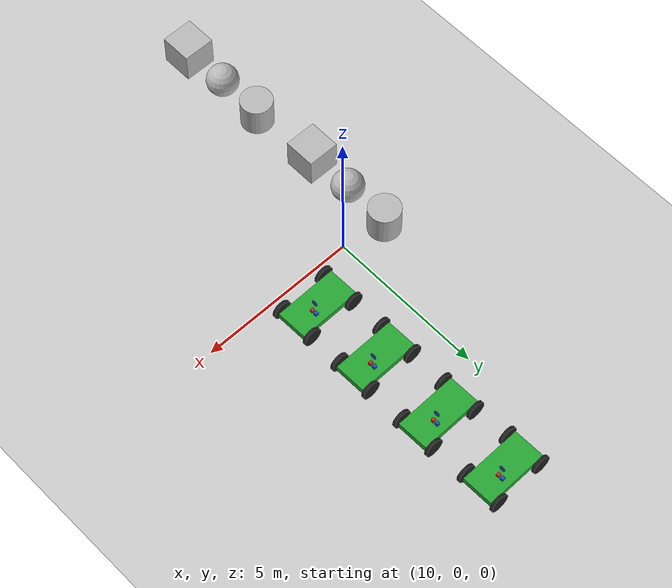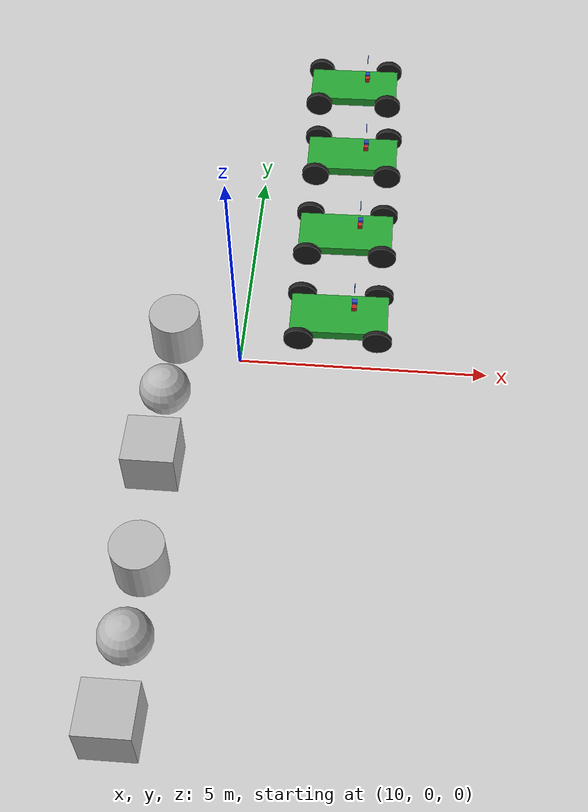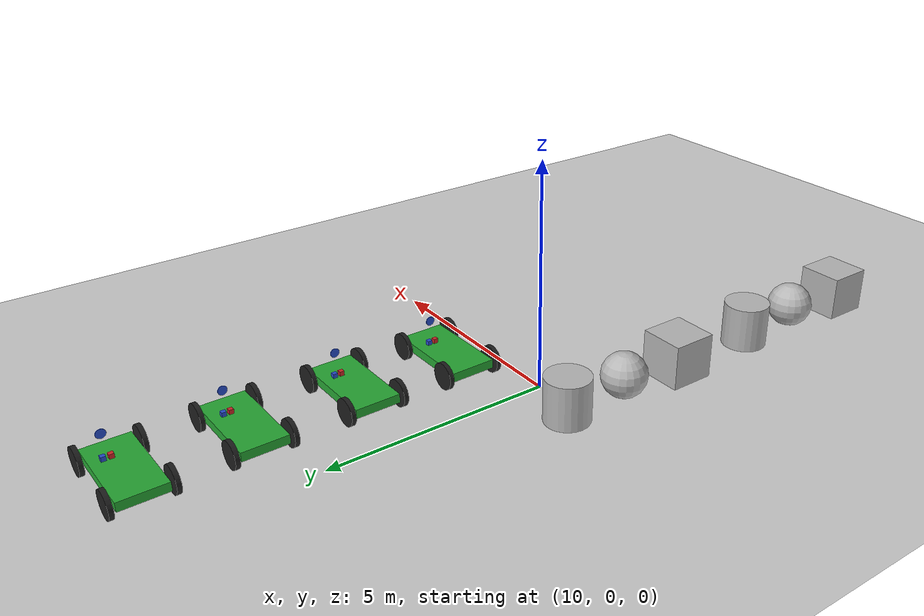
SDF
<sdf version="1.7">
 <world name="default">
  <model name="ground_plane">
   <static>1</static>
   <link name="link">
    <collision name="collision">
     <geometry><plane><normal>0 0 1</normal><size>100 100</size></plane></geometry>
     <surface>
      <contact><collide_bitmask>65535</collide_bitmask></contact>
      <friction><ode><mu>100</mu><mu2>50</mu2></ode></friction>
     </surface>
    </collision>
    <visual name="visual">
     <cast_shadows>0</cast_shadows>
     <geometry><plane><normal>0 0 1</normal><size>100 100</size></plane></geometry>
     <material>
      <script><uri>file://media/materials/scripts/gazebo.material</uri><name>Gazebo/Grey</name></script>
     </material>
    </visual>
   </link>
  </model>
  <model name="textured_shapes">
   <pose>8.80989 -6.41031 0.51 0 -0 0</pose>
   <link name="box">
    <pose>0 -1.5 0 0 -0 0</pose>
    <collision name="collision"><geometry><box><size>1 1 1</size></box></geometry></collision>
    <visual name="visual">
     <geometry><box><size>1 1 1</size></box></geometry>
     <material>
      <script>
       <uri>model://textured_shapes/materials/scripts</uri>
       <uri>model://textured_shapes/materials/textures</uri>
       <name>TexturedShape/Squares</name>
      </script>
     </material>
    </visual>
    <inertial>
     <inertia><ixx>1</ixx><ixy>0</ixy><ixz>0</ixz><iyy>1</iyy><iyz>0</iyz><izz>1</izz></inertia>
     <mass>1</mass>
    </inertial>
   </link>
   <link name="sphere">
    <collision name="collision"><geometry><sphere><radius>0.5</radius></sphere></geometry></collision>
    <visual name="visual">
     <geometry><sphere><radius>0.5</radius></sphere></geometry>
     <material>
      <script>
       <uri>model://textured_shapes/materials/scripts</uri>
       <uri>model://textured_shapes/materials/textures</uri>
       <name>TexturedShape/Squares</name>
      </script>
     </material>
    </visual>
    <inertial>
     <inertia><ixx>1</ixx><ixy>0</ixy><ixz>0</ixz><iyy>1</iyy><iyz>0</iyz><izz>1</izz></inertia>
     <mass>1</mass>
    </inertial>
   </link>
   <link name="cylinder">
    <pose>0 1.5 0 0 -0 0</pose>
    <collision name="collision">
     <geometry><cylinder><radius>0.5</radius><length>1</length></cylinder></geometry>
    </collision>
    <visual name="visual">
     <geometry><cylinder><radius>0.5</radius><length>1</length></cylinder></geometry>
     <material>
      <script>
       <uri>model://textured_shapes/materials/scripts</uri>
       <uri>model://textured_shapes/materials/textures</uri>
       <name>TexturedShape/Squares</name>
      </script>
     </material>
    </visual>
    <inertial>
     <inertia><ixx>1</ixx><ixy>0</ixy><ixz>0</ixz><iyy>1</iyy><iyz>0</iyz><izz>1</izz></inertia>
     <mass>1</mass>
    </inertial>
   </link>
  </model>
  <model name="textured_shapes_0">
   <pose>8.6966 -1.17541 0.51 0 -0 0</pose>
   <link name="box">
    <pose>0 -1.5 0 0 -0 0</pose>
    <collision name="collision"><geometry><box><size>1 1 1</size></box></geometry></collision>
    <visual name="visual">
     <geometry><box><size>1 1 1</size></box></geometry>
     <material>
      <script>
       <uri>model://textured_shapes/materials/scripts</uri>
       <uri>model://textured_shapes/materials/textures</uri>
       <name>TexturedShape/Squares</name>
      </script>
     </material>
    </visual>
    <inertial>
     <inertia><ixx>1</ixx><ixy>0</ixy><ixz>0</ixz><iyy>1</iyy><iyz>0</iyz><izz>1</izz></inertia>
     <mass>1</mass>
    </inertial>
   </link>
   <link name="sphere">
    <collision name="collision"><geometry><sphere><radius>0.5</radius></sphere></geometry></collision>
    <visual name="visual">
     <geometry><sphere><radius>0.5</radius></sphere></geometry>
     <material>
      <script>
       <uri>model://textured_shapes/materials/scripts</uri>
       <uri>model://textured_shapes/materials/textures</uri>
       <name>TexturedShape/Squares</name>
      </script>
     </material>
    </visual>
    <inertial>
     <inertia><ixx>1</ixx><ixy>0</ixy><ixz>0</ixz><iyy>1</iyy><iyz>0</iyz><izz>1</izz></inertia>
     <mass>1</mass>
    </inertial>
   </link>
   <link name="cylinder">
    <pose>0 1.5 0 0 -0 0</pose>
    <collision name="collision">
     <geometry><cylinder><radius>0.5</radius><length>1</length></cylinder></geometry>
    </collision>
    <visual name="visual">
     <geometry><cylinder><radius>0.5</radius><length>1</length></cylinder></geometry>
     <material>
      <script>
       <uri>model://textured_shapes/materials/scripts</uri>
       <uri>model://textured_shapes/materials/textures</uri>
       <name>TexturedShape/Squares</name>
      </script>
     </material>
    </visual>
    <inertial>
     <inertia><ixx>1</ixx><ixy>0</ixy><ixz>0</ixz><iyy>1</iyy><iyz>0</iyz><izz>1</izz></inertia>
     <mass>1</mass>
    </inertial>
   </link>
  </model>
  <model name="car">
   <link name="chassis">
    <pose>0 0 0.3 0 -0 0</pose>
    <collision name="collision"><geometry><box><size>2 1 0.2</size></box></geometry></collision>
    <visual name="visual">
     <geometry><box><size>2 1 0.2</size></box></geometry>
     <material>
      <script><uri>file://media/materials/scripts/gazebo.material</uri><name>Gazebo/Green</name></script>
     </material>
    </visual>
    <inertial>
     <inertia><ixx>1</ixx><ixy>0</ixy><ixz>0</ixz><iyy>1</iyy><iyz>0</iyz><izz>1</izz></inertia>
     <mass>1</mass>
    </inertial>
   </link>
   <link name="front_left_wheel">
    <pose>0.8 0.6 0.3 -0 1.5707 1.5707</pose>
    <collision name="collision">
     <geometry><cylinder><radius>0.3</radius><length>0.1</length></cylinder></geometry>
    </collision>
    <visual name="visual">
     <geometry><cylinder><radius>0.3</radius><length>0.1</length></cylinder></geometry>
     <material>
      <script><uri>file://media/materials/scripts/gazebo.material</uri><name>Gazebo/Black</name></script>
     </material>
    </visual>
    <inertial>
     <inertia><ixx>1</ixx><ixy>0</ixy><ixz>0</ixz><iyy>1</iyy><iyz>0</iyz><izz>1</izz></inertia>
     <mass>1</mass>
    </inertial>
   </link>
   <link name="front_right_wheel">
    <pose>0.8 -0.6 0.3 -0 1.5707 1.5707</pose>
    <collision name="collision">
     <geometry><cylinder><radius>0.3</radius><length>0.1</length></cylinder></geometry>
    </collision>
    <visual name="visual">
     <geometry><cylinder><radius>0.3</radius><length>0.1</length></cylinder></geometry>
     <material>
      <script><uri>file://media/materials/scripts/gazebo.material</uri><name>Gazebo/Black</name></script>
     </material>
    </visual>
    <inertial>
     <inertia><ixx>1</ixx><ixy>0</ixy><ixz>0</ixz><iyy>1</iyy><iyz>0</iyz><izz>1</izz></inertia>
     <mass>1</mass>
    </inertial>
   </link>
   <link name="back_right_wheel">
    <pose>-0.8 -0.6 0.3 -0 1.5707 1.5707</pose>
    <collision name="collision">
     <geometry><cylinder><radius>0.3</radius><length>0.1</length></cylinder></geometry>
    </collision>
    <visual name="visual">
     <geometry><cylinder><radius>0.3</radius><length>0.1</length></cylinder></geometry>
     <material>
      <script><uri>file://media/materials/scripts/gazebo.material</uri><name>Gazebo/Black</name></script>
     </material>
    </visual>
    <inertial>
     <inertia><ixx>1</ixx><ixy>0</ixy><ixz>0</ixz><iyy>1</iyy><iyz>0</iyz><izz>1</izz></inertia>
     <mass>1</mass>
    </inertial>
   </link>
   <link name="back_left_wheel">
    <pose>-0.8 0.6 0.3 -0 1.5707 1.5707</pose>
    <collision name="collision">
     <geometry><cylinder><radius>0.3</radius><length>0.1</length></cylinder></geometry>
    </collision>
    <visual name="visual">
     <geometry><cylinder><radius>0.3</radius><length>0.1</length></cylinder></geometry>
     <material>
      <script><uri>file://media/materials/scripts/gazebo.material</uri><name>Gazebo/Black</name></script>
     </material>
    </visual>
    <inertial>
     <inertia><ixx>1</ixx><ixy>0</ixy><ixz>0</ixz><iyy>1</iyy><iyz>0</iyz><izz>1</izz></inertia>
     <mass>1</mass>
    </inertial>
   </link>
   <link name="gas_pedal">
    <pose>0.3 0.1 0.5 0 -0 0</pose>
    <collision name="collision"><geometry><box><size>0.1 0.1 0.1</size></box></geometry></collision>
    <visual name="visual">
     <geometry><box><size>0.1 0.1 0.1</size></box></geometry>
     <material>
      <script><uri>file://media/materials/scripts/gazebo.material</uri><name>Gazebo/Red</name></script>
     </material>
    </visual>
    <inertial>
     <inertia><ixx>1</ixx><ixy>0</ixy><ixz>0</ixz><iyy>1</iyy><iyz>0</iyz><izz>1</izz></inertia>
     <mass>1</mass>
    </inertial>
   </link>
   <link name="brake_pedal">
    <pose>0.3 0.25 0.5 0 -0 0</pose>
    <collision name="collision"><geometry><box><size>0.1 0.1 0.1</size></box></geometry></collision>
    <visual name="visual">
     <geometry><box><size>0.1 0.1 0.1</size></box></geometry>
     <material>
      <script><uri>file://media/materials/scripts/gazebo.material</uri><name>Gazebo/Blue</name></script>
     </material>
    </visual>
    <inertial>
     <inertia><ixx>1</ixx><ixy>0</ixy><ixz>0</ixz><iyy>1</iyy><iyz>0</iyz><izz>1</izz></inertia>
     <mass>1</mass>
    </inertial>
   </link>
   <link name="steering_wheel">
    <pose>0.3 0.2 1 0 1.5707 0</pose>
    <collision name="collision">
     <geometry><cylinder><radius>0.1</radius><length>0.01</length></cylinder></geometry>
    </collision>
    <visual name="visual">
     <geometry><cylinder><radius>0.1</radius><length>0.01</length></cylinder></geometry>
     <material>
      <script><uri>file://media/materials/scripts/gazebo.material</uri><name>Gazebo/Blue</name></script>
     </material>
    </visual>
    <inertial>
     <inertia><ixx>1</ixx><ixy>0</ixy><ixz>0</ixz><iyy>1</iyy><iyz>0</iyz><izz>1</izz></inertia>
     <mass>1</mass>
    </inertial>
   </link>
   <joint name="gas_joint" type="prismatic">
    <parent>chassis</parent>
    <child>gas_pedal</child>
    <axis>
     <xyz expressed_in="__model__">1 0 0</xyz>
     <limit><lower>0</lower><upper>0.2</upper></limit>
     <dynamics><spring_reference>0</spring_reference><spring_stiffness>0</spring_stiffness></dynamics>
    </axis>
   </joint>
   <joint name="brake_joint" type="prismatic">
    <parent>chassis</parent>
    <child>brake_pedal</child>
    <axis>
     <xyz expressed_in="__model__">1 0 0</xyz>
     <limit><lower>0</lower><upper>0.2</upper></limit>
     <dynamics><spring_reference>0</spring_reference><spring_stiffness>0</spring_stiffness></dynamics>
    </axis>
   </joint>
   <joint name="steering_joint" type="revolute">
    <parent>chassis</parent>
    <child>steering_wheel</child>
    <axis>
     <xyz expressed_in="__model__">1 0 0</xyz>
     <limit><lower>-7.853</lower><upper>7.853</upper></limit>
     <dynamics><spring_reference>0</spring_reference><spring_stiffness>0</spring_stiffness></dynamics>
    </axis>
   </joint>
   <joint name="front_left_joint" type="revolute2">
    <parent>chassis</parent>
    <child>front_left_wheel</child>
    <axis>
     <xyz expressed_in="__model__">0 0 1</xyz>
     <limit><lower>1.93258e-07</lower><upper>1.93258e-07</upper></limit>
     <dynamics><spring_reference>0</spring_reference><spring_stiffness>0</spring_stiffness></dynamics>
    </axis>
    <axis2>
     <xyz expressed_in="__model__">0 1 0</xyz>
     <limit><upper>1e+16</upper><lower>-1e+16</lower></limit>
     <dynamics><spring_reference>0</spring_reference><spring_stiffness>0</spring_stiffness></dynamics>
    </axis2>
    <physics><ode><limit><cfm>0</cfm><erp>0.9</erp></limit></ode></physics>
   </joint>
   <joint name="front_right_joint" type="revolute2">
    <parent>chassis</parent>
    <child>front_right_wheel</child>
    <axis>
     <xyz expressed_in="__model__">0 0 1</xyz>
     <limit><lower>1.93258e-07</lower><upper>1.93258e-07</upper></limit>
     <dynamics><spring_reference>0</spring_reference><spring_stiffness>0</spring_stiffness></dynamics>
    </axis>
    <axis2>
     <xyz expressed_in="__model__">0 1 0</xyz>
     <limit><upper>1e+16</upper><lower>-1e+16</lower></limit>
     <dynamics><spring_reference>0</spring_reference><spring_stiffness>0</spring_stiffness></dynamics>
    </axis2>
    <physics><ode><limit><cfm>0</cfm><erp>0.9</erp></limit></ode></physics>
   </joint>
   <joint name="back_right_joint" type="revolute2">
    <parent>chassis</parent>
    <child>back_right_wheel</child>
    <axis>
     <xyz expressed_in="__model__">0 0 1</xyz>
     <limit><lower>0</lower><upper>0</upper></limit>
     <dynamics><spring_reference>0</spring_reference><spring_stiffness>0</spring_stiffness></dynamics>
    </axis>
    <axis2>
     <xyz expressed_in="__model__">0 1 0</xyz>
     <limit><upper>1e+16</upper><lower>-1e+16</lower></limit>
     <dynamics><spring_reference>0</spring_reference><spring_stiffness>0</spring_stiffness></dynamics>
    </axis2>
    <physics><ode><limit><cfm>0</cfm><erp>0.9</erp></limit></ode></physics>
   </joint>
   <joint name="back_left_joint" type="revolute2">
    <parent>chassis</parent>
    <child>back_left_wheel</child>
    <axis>
     <xyz expressed_in="__model__">0 0 1</xyz>
     <limit><lower>0</lower><upper>0</upper></limit>
     <dynamics><spring_reference>0</spring_reference><spring_stiffness>0</spring_stiffness></dynamics>
    </axis>
    <axis2>
     <xyz expressed_in="__model__">0 1 0</xyz>
     <limit><upper>1e+16</upper><lower>-1e+16</lower></limit>
     <dynamics><spring_reference>0</spring_reference><spring_stiffness>0</spring_stiffness></dynamics>
    </axis2>
    <physics><ode><limit><cfm>0</cfm><erp>0.9</erp></limit></ode></physics>
   </joint>
   <plugin name="vehicle" filename="libVehiclePlugin.so">
    <front_left>front_left_joint</front_left>
    <front_right>front_right_joint</front_right>
    <back_left>back_left_joint</back_left>
    <back_right>back_right_joint</back_right>
    <gas>gas_joint</gas>
    <brake>brake_joint</brake>
    <steering>steering_joint</steering>
    <front_power>10</front_power>
    <rear_power>10</rear_power>
    <tire_angle_range>0.5</tire_angle_range>
    <max_speed>10</max_speed>
    <aero_load>0.1</aero_load>
   </plugin>
   <pose>11.8074 8.08034 0.010011 -7e-06 6e-06 0.014485</pose>
  </model>
  <model name="car_0">
   <link name="chassis">
    <pose>0 0 0.3 0 -0 0</pose>
    <collision name="collision"><geometry><box><size>2 1 0.2</size></box></geometry></collision>
    <visual name="visual">
     <geometry><box><size>2 1 0.2</size></box></geometry>
     <material>
      <script><uri>file://media/materials/scripts/gazebo.material</uri><name>Gazebo/Green</name></script>
     </material>
    </visual>
    <inertial>
     <inertia><ixx>1</ixx><ixy>0</ixy><ixz>0</ixz><iyy>1</iyy><iyz>0</iyz><izz>1</izz></inertia>
     <mass>1</mass>
    </inertial>
   </link>
   <link name="front_left_wheel">
    <pose>0.8 0.6 0.3 -0 1.5707 1.5707</pose>
    <collision name="collision">
     <geometry><cylinder><radius>0.3</radius><length>0.1</length></cylinder></geometry>
    </collision>
    <visual name="visual">
     <geometry><cylinder><radius>0.3</radius><length>0.1</length></cylinder></geometry>
     <material>
      <script><uri>file://media/materials/scripts/gazebo.material</uri><name>Gazebo/Black</name></script>
     </material>
    </visual>
    <inertial>
     <inertia><ixx>1</ixx><ixy>0</ixy><ixz>0</ixz><iyy>1</iyy><iyz>0</iyz><izz>1</izz></inertia>
     <mass>1</mass>
    </inertial>
   </link>
   <link name="front_right_wheel">
    <pose>0.8 -0.6 0.3 -0 1.5707 1.5707</pose>
    <collision name="collision">
     <geometry><cylinder><radius>0.3</radius><length>0.1</length></cylinder></geometry>
    </collision>
    <visual name="visual">
     <geometry><cylinder><radius>0.3</radius><length>0.1</length></cylinder></geometry>
     <material>
      <script><uri>file://media/materials/scripts/gazebo.material</uri><name>Gazebo/Black</name></script>
     </material>
    </visual>
    <inertial>
     <inertia><ixx>1</ixx><ixy>0</ixy><ixz>0</ixz><iyy>1</iyy><iyz>0</iyz><izz>1</izz></inertia>
     <mass>1</mass>
    </inertial>
   </link>
   <link name="back_right_wheel">
    <pose>-0.8 -0.6 0.3 -0 1.5707 1.5707</pose>
    <collision name="collision">
     <geometry><cylinder><radius>0.3</radius><length>0.1</length></cylinder></geometry>
    </collision>
    <visual name="visual">
     <geometry><cylinder><radius>0.3</radius><length>0.1</length></cylinder></geometry>
     <material>
      <script><uri>file://media/materials/scripts/gazebo.material</uri><name>Gazebo/Black</name></script>
     </material>
    </visual>
    <inertial>
     <inertia><ixx>1</ixx><ixy>0</ixy><ixz>0</ixz><iyy>1</iyy><iyz>0</iyz><izz>1</izz></inertia>
     <mass>1</mass>
    </inertial>
   </link>
   <link name="back_left_wheel">
    <pose>-0.8 0.6 0.3 -0 1.5707 1.5707</pose>
    <collision name="collision">
     <geometry><cylinder><radius>0.3</radius><length>0.1</length></cylinder></geometry>
    </collision>
    <visual name="visual">
     <geometry><cylinder><radius>0.3</radius><length>0.1</length></cylinder></geometry>
     <material>
      <script><uri>file://media/materials/scripts/gazebo.material</uri><name>Gazebo/Black</name></script>
     </material>
    </visual>
    <inertial>
     <inertia><ixx>1</ixx><ixy>0</ixy><ixz>0</ixz><iyy>1</iyy><iyz>0</iyz><izz>1</izz></inertia>
     <mass>1</mass>
    </inertial>
   </link>
   <link name="gas_pedal">
    <pose>0.3 0.1 0.5 0 -0 0</pose>
    <collision name="collision"><geometry><box><size>0.1 0.1 0.1</size></box></geometry></collision>
    <visual name="visual">
     <geometry><box><size>0.1 0.1 0.1</size></box></geometry>
     <material>
      <script><uri>file://media/materials/scripts/gazebo.material</uri><name>Gazebo/Red</name></script>
     </material>
    </visual>
    <inertial>
     <inertia><ixx>1</ixx><ixy>0</ixy><ixz>0</ixz><iyy>1</iyy><iyz>0</iyz><izz>1</izz></inertia>
     <mass>1</mass>
    </inertial>
   </link>
   <link name="brake_pedal">
    <pose>0.3 0.25 0.5 0 -0 0</pose>
    <collision name="collision"><geometry><box><size>0.1 0.1 0.1</size></box></geometry></collision>
    <visual name="visual">
     <geometry><box><size>0.1 0.1 0.1</size></box></geometry>
     <material>
      <script><uri>file://media/materials/scripts/gazebo.material</uri><name>Gazebo/Blue</name></script>
     </material>
    </visual>
    <inertial>
     <inertia><ixx>1</ixx><ixy>0</ixy><ixz>0</ixz><iyy>1</iyy><iyz>0</iyz><izz>1</izz></inertia>
     <mass>1</mass>
    </inertial>
   </link>
   <link name="steering_wheel">
    <pose>0.3 0.2 1 0 1.5707 0</pose>
    <collision name="collision">
     <geometry><cylinder><radius>0.1</radius><length>0.01</length></cylinder></geometry>
    </collision>
    <visual name="visual">
     <geometry><cylinder><radius>0.1</radius><length>0.01</length></cylinder></geometry>
     <material>
      <script><uri>file://media/materials/scripts/gazebo.material</uri><name>Gazebo/Blue</name></script>
     </material>
    </visual>
    <inertial>
     <inertia><ixx>1</ixx><ixy>0</ixy><ixz>0</ixz><iyy>1</iyy><iyz>0</iyz><izz>1</izz></inertia>
     <mass>1</mass>
    </inertial>
   </link>
   <joint name="gas_joint" type="prismatic">
    <parent>chassis</parent>
    <child>gas_pedal</child>
    <axis>
     <xyz expressed_in="__model__">1 0 0</xyz>
     <limit><lower>0</lower><upper>0.2</upper></limit>
     <dynamics><spring_reference>0</spring_reference><spring_stiffness>0</spring_stiffness></dynamics>
    </axis>
   </joint>
   <joint name="brake_joint" type="prismatic">
    <parent>chassis</parent>
    <child>brake_pedal</child>
    <axis>
     <xyz expressed_in="__model__">1 0 0</xyz>
     <limit><lower>0</lower><upper>0.2</upper></limit>
     <dynamics><spring_reference>0</spring_reference><spring_stiffness>0</spring_stiffness></dynamics>
    </axis>
   </joint>
   <joint name="steering_joint" type="revolute">
    <parent>chassis</parent>
    <child>steering_wheel</child>
    <axis>
     <xyz expressed_in="__model__">1 0 0</xyz>
     <limit><lower>-7.853</lower><upper>7.853</upper></limit>
     <dynamics><spring_reference>0</spring_reference><spring_stiffness>0</spring_stiffness></dynamics>
    </axis>
   </joint>
   <joint name="front_left_joint" type="revolute2">
    <parent>chassis</parent>
    <child>front_left_wheel</child>
    <axis>
     <xyz expressed_in="__model__">0 0 1</xyz>
     <limit><lower>1.87729e-07</lower><upper>1.87729e-07</upper></limit>
     <dynamics><spring_reference>0</spring_reference><spring_stiffness>0</spring_stiffness></dynamics>
    </axis>
    <axis2>
     <xyz expressed_in="__model__">0 1 0</xyz>
     <limit><upper>1e+16</upper><lower>-1e+16</lower></limit>
     <dynamics><spring_reference>0</spring_reference><spring_stiffness>0</spring_stiffness></dynamics>
    </axis2>
    <physics><ode><limit><cfm>0</cfm><erp>0.9</erp></limit></ode></physics>
   </joint>
   <joint name="front_right_joint" type="revolute2">
    <parent>chassis</parent>
    <child>front_right_wheel</child>
    <axis>
     <xyz expressed_in="__model__">0 0 1</xyz>
     <limit><lower>1.87729e-07</lower><upper>1.87729e-07</upper></limit>
     <dynamics><spring_reference>0</spring_reference><spring_stiffness>0</spring_stiffness></dynamics>
    </axis>
    <axis2>
     <xyz expressed_in="__model__">0 1 0</xyz>
     <limit><upper>1e+16</upper><lower>-1e+16</lower></limit>
     <dynamics><spring_reference>0</spring_reference><spring_stiffness>0</spring_stiffness></dynamics>
    </axis2>
    <physics><ode><limit><cfm>0</cfm><erp>0.9</erp></limit></ode></physics>
   </joint>
   <joint name="back_right_joint" type="revolute2">
    <parent>chassis</parent>
    <child>back_right_wheel</child>
    <axis>
     <xyz expressed_in="__model__">0 0 1</xyz>
     <limit><lower>0</lower><upper>0</upper></limit>
     <dynamics><spring_reference>0</spring_reference><spring_stiffness>0</spring_stiffness></dynamics>
    </axis>
    <axis2>
     <xyz expressed_in="__model__">0 1 0</xyz>
     <limit><upper>1e+16</upper><lower>-1e+16</lower></limit>
     <dynamics><spring_reference>0</spring_reference><spring_stiffness>0</spring_stiffness></dynamics>
    </axis2>
    <physics><ode><limit><cfm>0</cfm><erp>0.9</erp></limit></ode></physics>
   </joint>
   <joint name="back_left_joint" type="revolute2">
    <parent>chassis</parent>
    <child>back_left_wheel</child>
    <axis>
     <xyz expressed_in="__model__">0 0 1</xyz>
     <limit><lower>0</lower><upper>0</upper></limit>
     <dynamics><spring_reference>0</spring_reference><spring_stiffness>0</spring_stiffness></dynamics>
    </axis>
    <axis2>
     <xyz expressed_in="__model__">0 1 0</xyz>
     <limit><upper>1e+16</upper><lower>-1e+16</lower></limit>
     <dynamics><spring_reference>0</spring_reference><spring_stiffness>0</spring_stiffness></dynamics>
    </axis2>
    <physics><ode><limit><cfm>0</cfm><erp>0.9</erp></limit></ode></physics>
   </joint>
   <plugin name="vehicle" filename="libVehiclePlugin.so">
    <front_left>front_left_joint</front_left>
    <front_right>front_right_joint</front_right>
    <back_left>back_left_joint</back_left>
    <back_right>back_right_joint</back_right>
    <gas>gas_joint</gas>
    <brake>brake_joint</brake>
    <steering>steering_joint</steering>
    <front_power>10</front_power>
    <rear_power>10</rear_power>
    <tire_angle_range>0.5</tire_angle_range>
    <max_speed>10</max_speed>
    <aero_load>0.1</aero_load>
   </plugin>
   <pose>11.9127 5.7519 0.010011 -3e-06 3e-06 0.015005</pose>
  </model>
  <model name="car_1">
   <link name="chassis">
    <pose>0 0 0.3 0 -0 0</pose>
    <collision name="collision"><geometry><box><size>2 1 0.2</size></box></geometry></collision>
    <visual name="visual">
     <geometry><box><size>2 1 0.2</size></box></geometry>
     <material>
      <script><uri>file://media/materials/scripts/gazebo.material</uri><name>Gazebo/Green</name></script>
     </material>
    </visual>
    <inertial>
     <inertia><ixx>1</ixx><ixy>0</ixy><ixz>0</ixz><iyy>1</iyy><iyz>0</iyz><izz>1</izz></inertia>
     <mass>1</mass>
    </inertial>
   </link>
   <link name="front_left_wheel">
    <pose>0.8 0.6 0.3 -0 1.5707 1.5707</pose>
    <collision name="collision">
     <geometry><cylinder><radius>0.3</radius><length>0.1</length></cylinder></geometry>
    </collision>
    <visual name="visual">
     <geometry><cylinder><radius>0.3</radius><length>0.1</length></cylinder></geometry>
     <material>
      <script><uri>file://media/materials/scripts/gazebo.material</uri><name>Gazebo/Black</name></script>
     </material>
    </visual>
    <inertial>
     <inertia><ixx>1</ixx><ixy>0</ixy><ixz>0</ixz><iyy>1</iyy><iyz>0</iyz><izz>1</izz></inertia>
     <mass>1</mass>
    </inertial>
   </link>
   <link name="front_right_wheel">
    <pose>0.8 -0.6 0.3 -0 1.5707 1.5707</pose>
    <collision name="collision">
     <geometry><cylinder><radius>0.3</radius><length>0.1</length></cylinder></geometry>
    </collision>
    <visual name="visual">
     <geometry><cylinder><radius>0.3</radius><length>0.1</length></cylinder></geometry>
     <material>
      <script><uri>file://media/materials/scripts/gazebo.material</uri><name>Gazebo/Black</name></script>
     </material>
    </visual>
    <inertial>
     <inertia><ixx>1</ixx><ixy>0</ixy><ixz>0</ixz><iyy>1</iyy><iyz>0</iyz><izz>1</izz></inertia>
     <mass>1</mass>
    </inertial>
   </link>
   <link name="back_right_wheel">
    <pose>-0.8 -0.6 0.3 -0 1.5707 1.5707</pose>
    <collision name="collision">
     <geometry><cylinder><radius>0.3</radius><length>0.1</length></cylinder></geometry>
    </collision>
    <visual name="visual">
     <geometry><cylinder><radius>0.3</radius><length>0.1</length></cylinder></geometry>
     <material>
      <script><uri>file://media/materials/scripts/gazebo.material</uri><name>Gazebo/Black</name></script>
     </material>
    </visual>
    <inertial>
     <inertia><ixx>1</ixx><ixy>0</ixy><ixz>0</ixz><iyy>1</iyy><iyz>0</iyz><izz>1</izz></inertia>
     <mass>1</mass>
    </inertial>
   </link>
   <link name="back_left_wheel">
    <pose>-0.8 0.6 0.3 -0 1.5707 1.5707</pose>
    <collision name="collision">
     <geometry><cylinder><radius>0.3</radius><length>0.1</length></cylinder></geometry>
    </collision>
    <visual name="visual">
     <geometry><cylinder><radius>0.3</radius><length>0.1</length></cylinder></geometry>
     <material>
      <script><uri>file://media/materials/scripts/gazebo.material</uri><name>Gazebo/Black</name></script>
     </material>
    </visual>
    <inertial>
     <inertia><ixx>1</ixx><ixy>0</ixy><ixz>0</ixz><iyy>1</iyy><iyz>0</iyz><izz>1</izz></inertia>
     <mass>1</mass>
    </inertial>
   </link>
   <link name="gas_pedal">
    <pose>0.3 0.1 0.5 0 -0 0</pose>
    <collision name="collision"><geometry><box><size>0.1 0.1 0.1</size></box></geometry></collision>
    <visual name="visual">
     <geometry><box><size>0.1 0.1 0.1</size></box></geometry>
     <material>
      <script><uri>file://media/materials/scripts/gazebo.material</uri><name>Gazebo/Red</name></script>
     </material>
    </visual>
    <inertial>
     <inertia><ixx>1</ixx><ixy>0</ixy><ixz>0</ixz><iyy>1</iyy><iyz>0</iyz><izz>1</izz></inertia>
     <mass>1</mass>
    </inertial>
   </link>
   <link name="brake_pedal">
    <pose>0.3 0.25 0.5 0 -0 0</pose>
    <collision name="collision"><geometry><box><size>0.1 0.1 0.1</size></box></geometry></collision>
    <visual name="visual">
     <geometry><box><size>0.1 0.1 0.1</size></box></geometry>
     <material>
      <script><uri>file://media/materials/scripts/gazebo.material</uri><name>Gazebo/Blue</name></script>
     </material>
    </visual>
    <inertial>
     <inertia><ixx>1</ixx><ixy>0</ixy><ixz>0</ixz><iyy>1</iyy><iyz>0</iyz><izz>1</izz></inertia>
     <mass>1</mass>
    </inertial>
   </link>
   <link name="steering_wheel">
    <pose>0.3 0.2 1 0 1.5707 0</pose>
    <collision name="collision">
     <geometry><cylinder><radius>0.1</radius><length>0.01</length></cylinder></geometry>
    </collision>
    <visual name="visual">
     <geometry><cylinder><radius>0.1</radius><length>0.01</length></cylinder></geometry>
     <material>
      <script><uri>file://media/materials/scripts/gazebo.material</uri><name>Gazebo/Blue</name></script>
     </material>
    </visual>
    <inertial>
     <inertia><ixx>1</ixx><ixy>0</ixy><ixz>0</ixz><iyy>1</iyy><iyz>0</iyz><izz>1</izz></inertia>
     <mass>1</mass>
    </inertial>
   </link>
   <joint name="gas_joint" type="prismatic">
    <parent>chassis</parent>
    <child>gas_pedal</child>
    <axis>
     <xyz expressed_in="__model__">1 0 0</xyz>
     <limit><lower>0</lower><upper>0.2</upper></limit>
     <dynamics><spring_reference>0</spring_reference><spring_stiffness>0</spring_stiffness></dynamics>
    </axis>
   </joint>
   <joint name="brake_joint" type="prismatic">
    <parent>chassis</parent>
    <child>brake_pedal</child>
    <axis>
     <xyz expressed_in="__model__">1 0 0</xyz>
     <limit><lower>0</lower><upper>0.2</upper></limit>
     <dynamics><spring_reference>0</spring_reference><spring_stiffness>0</spring_stiffness></dynamics>
    </axis>
   </joint>
   <joint name="steering_joint" type="revolute">
    <parent>chassis</parent>
    <child>steering_wheel</child>
    <axis>
     <xyz expressed_in="__model__">1 0 0</xyz>
     <limit><lower>-7.853</lower><upper>7.853</upper></limit>
     <dynamics><spring_reference>0</spring_reference><spring_stiffness>0</spring_stiffness></dynamics>
    </axis>
   </joint>
   <joint name="front_left_joint" type="revolute2">
    <parent>chassis</parent>
    <child>front_left_wheel</child>
    <axis>
     <xyz expressed_in="__model__">0 0 1</xyz>
     <limit><lower>1.13726e-07</lower><upper>1.13726e-07</upper></limit>
     <dynamics><spring_reference>0</spring_reference><spring_stiffness>0</spring_stiffness></dynamics>
    </axis>
    <axis2>
     <xyz expressed_in="__model__">0 1 0</xyz>
     <limit><upper>1e+16</upper><lower>-1e+16</lower></limit>
     <dynamics><spring_reference>0</spring_reference><spring_stiffness>0</spring_stiffness></dynamics>
    </axis2>
    <physics><ode><limit><cfm>0</cfm><erp>0.9</erp></limit></ode></physics>
   </joint>
   <joint name="front_right_joint" type="revolute2">
    <parent>chassis</parent>
    <child>front_right_wheel</child>
    <axis>
     <xyz expressed_in="__model__">0 0 1</xyz>
     <limit><lower>1.13726e-07</lower><upper>1.13726e-07</upper></limit>
     <dynamics><spring_reference>0</spring_reference><spring_stiffness>0</spring_stiffness></dynamics>
    </axis>
    <axis2>
     <xyz expressed_in="__model__">0 1 0</xyz>
     <limit><upper>1e+16</upper><lower>-1e+16</lower></limit>
     <dynamics><spring_reference>0</spring_reference><spring_stiffness>0</spring_stiffness></dynamics>
    </axis2>
    <physics><ode><limit><cfm>0</cfm><erp>0.9</erp></limit></ode></physics>
   </joint>
   <joint name="back_right_joint" type="revolute2">
    <parent>chassis</parent>
    <child>back_right_wheel</child>
    <axis>
     <xyz expressed_in="__model__">0 0 1</xyz>
     <limit><lower>0</lower><upper>0</upper></limit>
     <dynamics><spring_reference>0</spring_reference><spring_stiffness>0</spring_stiffness></dynamics>
    </axis>
    <axis2>
     <xyz expressed_in="__model__">0 1 0</xyz>
     <limit><upper>1e+16</upper><lower>-1e+16</lower></limit>
     <dynamics><spring_reference>0</spring_reference><spring_stiffness>0</spring_stiffness></dynamics>
    </axis2>
    <physics><ode><limit><cfm>0</cfm><erp>0.9</erp></limit></ode></physics>
   </joint>
   <joint name="back_left_joint" type="revolute2">
    <parent>chassis</parent>
    <child>back_left_wheel</child>
    <axis>
     <xyz expressed_in="__model__">0 0 1</xyz>
     <limit><lower>0</lower><upper>0</upper></limit>
     <dynamics><spring_reference>0</spring_reference><spring_stiffness>0</spring_stiffness></dynamics>
    </axis>
    <axis2>
     <xyz expressed_in="__model__">0 1 0</xyz>
     <limit><upper>1e+16</upper><lower>-1e+16</lower></limit>
     <dynamics><spring_reference>0</spring_reference><spring_stiffness>0</spring_stiffness></dynamics>
    </axis2>
    <physics><ode><limit><cfm>0</cfm><erp>0.9</erp></limit></ode></physics>
   </joint>
   <plugin name="vehicle" filename="libVehiclePlugin.so">
    <front_left>front_left_joint</front_left>
    <front_right>front_right_joint</front_right>
    <back_left>back_left_joint</back_left>
    <back_right>back_right_joint</back_right>
    <gas>gas_joint</gas>
    <brake>brake_joint</brake>
    <steering>steering_joint</steering>
    <front_power>10</front_power>
    <rear_power>10</rear_power>
    <tire_angle_range>0.5</tire_angle_range>
    <max_speed>10</max_speed>
    <aero_load>0.1</aero_load>
   </plugin>
   <pose>11.9286 3.34642 0.010008 -3e-06 7e-06 0.015009</pose>
  </model>
  <model name="car_2">
   <link name="chassis">
    <pose>0 0 0.3 0 -0 0</pose>
    <collision name="collision"><geometry><box><size>2 1 0.2</size></box></geometry></collision>
    <visual name="visual">
     <geometry><box><size>2 1 0.2</size></box></geometry>
     <material>
      <script><uri>file://media/materials/scripts/gazebo.material</uri><name>Gazebo/Green</name></script>
     </material>
    </visual>
    <inertial>
     <inertia><ixx>1</ixx><ixy>0</ixy><ixz>0</ixz><iyy>1</iyy><iyz>0</iyz><izz>1</izz></inertia>
     <mass>1</mass>
    </inertial>
   </link>
   <link name="front_left_wheel">
    <pose>0.8 0.6 0.3 -0 1.5707 1.5707</pose>
    <collision name="collision">
     <geometry><cylinder><radius>0.3</radius><length>0.1</length></cylinder></geometry>
    </collision>
    <visual name="visual">
     <geometry><cylinder><radius>0.3</radius><length>0.1</length></cylinder></geometry>
     <material>
      <script><uri>file://media/materials/scripts/gazebo.material</uri><name>Gazebo/Black</name></script>
     </material>
    </visual>
    <inertial>
     <inertia><ixx>1</ixx><ixy>0</ixy><ixz>0</ixz><iyy>1</iyy><iyz>0</iyz><izz>1</izz></inertia>
     <mass>1</mass>
    </inertial>
   </link>
   <link name="front_right_wheel">
    <pose>0.8 -0.6 0.3 -0 1.5707 1.5707</pose>
    <collision name="collision">
     <geometry><cylinder><radius>0.3</radius><length>0.1</length></cylinder></geometry>
    </collision>
    <visual name="visual">
     <geometry><cylinder><radius>0.3</radius><length>0.1</length></cylinder></geometry>
     <material>
      <script><uri>file://media/materials/scripts/gazebo.material</uri><name>Gazebo/Black</name></script>
     </material>
    </visual>
    <inertial>
     <inertia><ixx>1</ixx><ixy>0</ixy><ixz>0</ixz><iyy>1</iyy><iyz>0</iyz><izz>1</izz></inertia>
     <mass>1</mass>
    </inertial>
   </link>
   <link name="back_right_wheel">
    <pose>-0.8 -0.6 0.3 -0 1.5707 1.5707</pose>
    <collision name="collision">
     <geometry><cylinder><radius>0.3</radius><length>0.1</length></cylinder></geometry>
    </collision>
    <visual name="visual">
     <geometry><cylinder><radius>0.3</radius><length>0.1</length></cylinder></geometry>
     <material>
      <script><uri>file://media/materials/scripts/gazebo.material</uri><name>Gazebo/Black</name></script>
     </material>
    </visual>
    <inertial>
     <inertia><ixx>1</ixx><ixy>0</ixy><ixz>0</ixz><iyy>1</iyy><iyz>0</iyz><izz>1</izz></inertia>
     <mass>1</mass>
    </inertial>
   </link>
   <link name="back_left_wheel">
    <pose>-0.8 0.6 0.3 -0 1.5707 1.5707</pose>
    <collision name="collision">
     <geometry><cylinder><radius>0.3</radius><length>0.1</length></cylinder></geometry>
    </collision>
    <visual name="visual">
     <geometry><cylinder><radius>0.3</radius><length>0.1</length></cylinder></geometry>
     <material>
      <script><uri>file://media/materials/scripts/gazebo.material</uri><name>Gazebo/Black</name></script>
     </material>
    </visual>
    <inertial>
     <inertia><ixx>1</ixx><ixy>0</ixy><ixz>0</ixz><iyy>1</iyy><iyz>0</iyz><izz>1</izz></inertia>
     <mass>1</mass>
    </inertial>
   </link>
   <link name="gas_pedal">
    <pose>0.3 0.1 0.5 0 -0 0</pose>
    <collision name="collision"><geometry><box><size>0.1 0.1 0.1</size></box></geometry></collision>
    <visual name="visual">
     <geometry><box><size>0.1 0.1 0.1</size></box></geometry>
     <material>
      <script><uri>file://media/materials/scripts/gazebo.material</uri><name>Gazebo/Red</name></script>
     </material>
    </visual>
    <inertial>
     <inertia><ixx>1</ixx><ixy>0</ixy><ixz>0</ixz><iyy>1</iyy><iyz>0</iyz><izz>1</izz></inertia>
     <mass>1</mass>
    </inertial>
   </link>
   <link name="brake_pedal">
    <pose>0.3 0.25 0.5 0 -0 0</pose>
    <collision name="collision"><geometry><box><size>0.1 0.1 0.1</size></box></geometry></collision>
    <visual name="visual">
     <geometry><box><size>0.1 0.1 0.1</size></box></geometry>
     <material>
      <script><uri>file://media/materials/scripts/gazebo.material</uri><name>Gazebo/Blue</name></script>
     </material>
    </visual>
    <inertial>
     <inertia><ixx>1</ixx><ixy>0</ixy><ixz>0</ixz><iyy>1</iyy><iyz>0</iyz><izz>1</izz></inertia>
     <mass>1</mass>
    </inertial>
   </link>
   <link name="steering_wheel">
    <pose>0.3 0.2 1 0 1.5707 0</pose>
    <collision name="collision">
     <geometry><cylinder><radius>0.1</radius><length>0.01</length></cylinder></geometry>
    </collision>
    <visual name="visual">
     <geometry><cylinder><radius>0.1</radius><length>0.01</length></cylinder></geometry>
     <material>
      <script><uri>file://media/materials/scripts/gazebo.material</uri><name>Gazebo/Blue</name></script>
     </material>
    </visual>
    <inertial>
     <inertia><ixx>1</ixx><ixy>0</ixy><ixz>0</ixz><iyy>1</iyy><iyz>0</iyz><izz>1</izz></inertia>
     <mass>1</mass>
    </inertial>
   </link>
   <joint name="gas_joint" type="prismatic">
    <parent>chassis</parent>
    <child>gas_pedal</child>
    <axis>
     <xyz expressed_in="__model__">1 0 0</xyz>
     <limit><lower>0</lower><upper>0.2</upper></limit>
     <dynamics><spring_reference>0</spring_reference><spring_stiffness>0</spring_stiffness></dynamics>
    </axis>
   </joint>
   <joint name="brake_joint" type="prismatic">
    <parent>chassis</parent>
    <child>brake_pedal</child>
    <axis>
     <xyz expressed_in="__model__">1 0 0</xyz>
     <limit><lower>0</lower><upper>0.2</upper></limit>
     <dynamics><spring_reference>0</spring_reference><spring_stiffness>0</spring_stiffness></dynamics>
    </axis>
   </joint>
   <joint name="steering_joint" type="revolute">
    <parent>chassis</parent>
    <child>steering_wheel</child>
    <axis>
     <xyz expressed_in="__model__">1 0 0</xyz>
     <limit><lower>-7.853</lower><upper>7.853</upper></limit>
     <dynamics><spring_reference>0</spring_reference><spring_stiffness>0</spring_stiffness></dynamics>
    </axis>
   </joint>
   <joint name="front_left_joint" type="revolute2">
    <parent>chassis</parent>
    <child>front_left_wheel</child>
    <axis>
     <xyz expressed_in="__model__">0 0 1</xyz>
     <limit><lower>1.85715e-07</lower><upper>1.85715e-07</upper></limit>
     <dynamics><spring_reference>0</spring_reference><spring_stiffness>0</spring_stiffness></dynamics>
    </axis>
    <axis2>
     <xyz expressed_in="__model__">0 1 0</xyz>
     <limit><upper>1e+16</upper><lower>-1e+16</lower></limit>
     <dynamics><spring_reference>0</spring_reference><spring_stiffness>0</spring_stiffness></dynamics>
    </axis2>
    <physics><ode><limit><cfm>0</cfm><erp>0.9</erp></limit></ode></physics>
   </joint>
   <joint name="front_right_joint" type="revolute2">
    <parent>chassis</parent>
    <child>front_right_wheel</child>
    <axis>
     <xyz expressed_in="__model__">0 0 1</xyz>
     <limit><lower>1.85715e-07</lower><upper>1.85715e-07</upper></limit>
     <dynamics><spring_reference>0</spring_reference><spring_stiffness>0</spring_stiffness></dynamics>
    </axis>
    <axis2>
     <xyz expressed_in="__model__">0 1 0</xyz>
     <limit><upper>1e+16</upper><lower>-1e+16</lower></limit>
     <dynamics><spring_reference>0</spring_reference><spring_stiffness>0</spring_stiffness></dynamics>
    </axis2>
    <physics><ode><limit><cfm>0</cfm><erp>0.9</erp></limit></ode></physics>
   </joint>
   <joint name="back_right_joint" type="revolute2">
    <parent>chassis</parent>
    <child>back_right_wheel</child>
    <axis>
     <xyz expressed_in="__model__">0 0 1</xyz>
     <limit><lower>0</lower><upper>0</upper></limit>
     <dynamics><spring_reference>0</spring_reference><spring_stiffness>0</spring_stiffness></dynamics>
    </axis>
    <axis2>
     <xyz expressed_in="__model__">0 1 0</xyz>
     <limit><upper>1e+16</upper><lower>-1e+16</lower></limit>
     <dynamics><spring_reference>0</spring_reference><spring_stiffness>0</spring_stiffness></dynamics>
    </axis2>
    <physics><ode><limit><cfm>0</cfm><erp>0.9</erp></limit></ode></physics>
   </joint>
   <joint name="back_left_joint" type="revolute2">
    <parent>chassis</parent>
    <child>back_left_wheel</child>
    <axis>
     <xyz expressed_in="__model__">0 0 1</xyz>
     <limit><lower>0</lower><upper>0</upper></limit>
     <dynamics><spring_reference>0</spring_reference><spring_stiffness>0</spring_stiffness></dynamics>
    </axis>
    <axis2>
     <xyz expressed_in="__model__">0 1 0</xyz>
     <limit><upper>1e+16</upper><lower>-1e+16</lower></limit>
     <dynamics><spring_reference>0</spring_reference><spring_stiffness>0</spring_stiffness></dynamics>
    </axis2>
    <physics><ode><limit><cfm>0</cfm><erp>0.9</erp></limit></ode></physics>
   </joint>
   <plugin name="vehicle" filename="libVehiclePlugin.so">
    <front_left>front_left_joint</front_left>
    <front_right>front_right_joint</front_right>
    <back_left>back_left_joint</back_left>
    <back_right>back_right_joint</back_right>
    <gas>gas_joint</gas>
    <brake>brake_joint</brake>
    <steering>steering_joint</steering>
    <front_power>10</front_power>
    <rear_power>10</rear_power>
    <tire_angle_range>0.5</tire_angle_range>
    <max_speed>10</max_speed>
    <aero_load>0.1</aero_load>
   </plugin>
   <pose>11.9491 1.04546 0.010011 -6e-06 6e-06 0.014878</pose>
  </model>
 </world>
</sdf>
